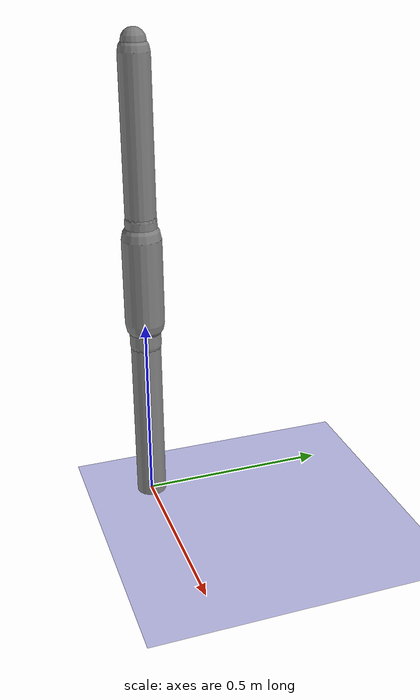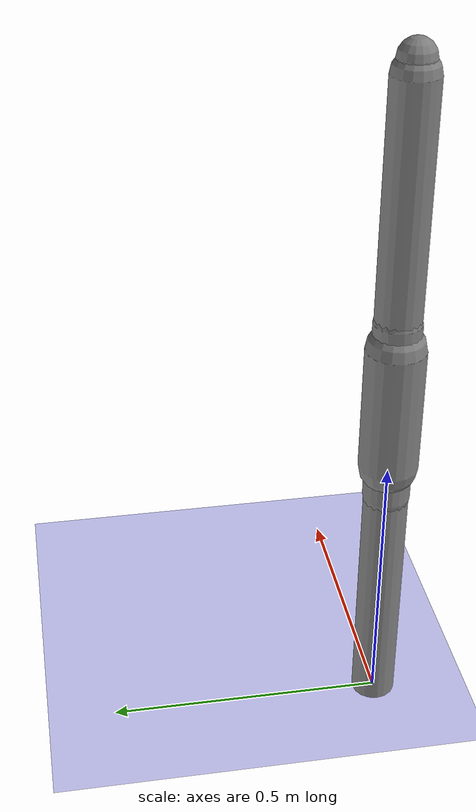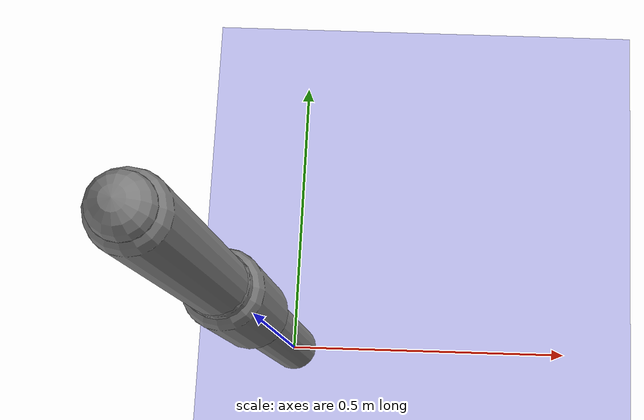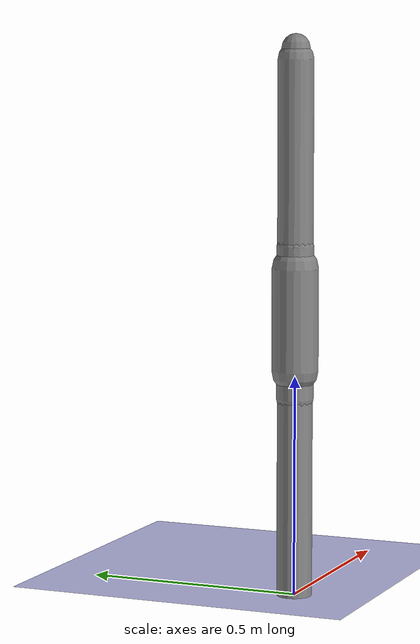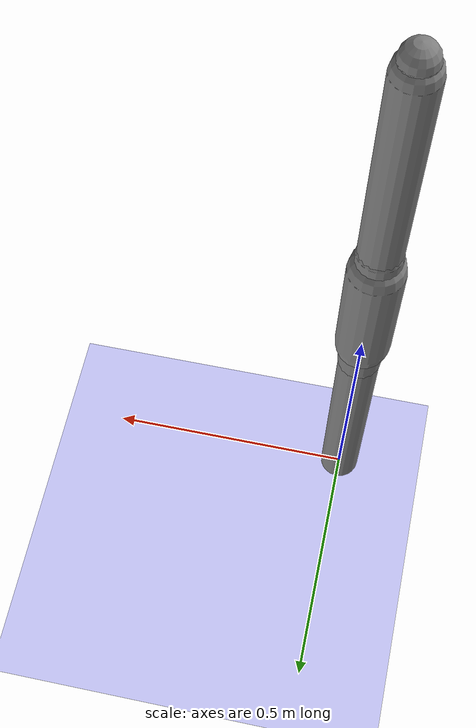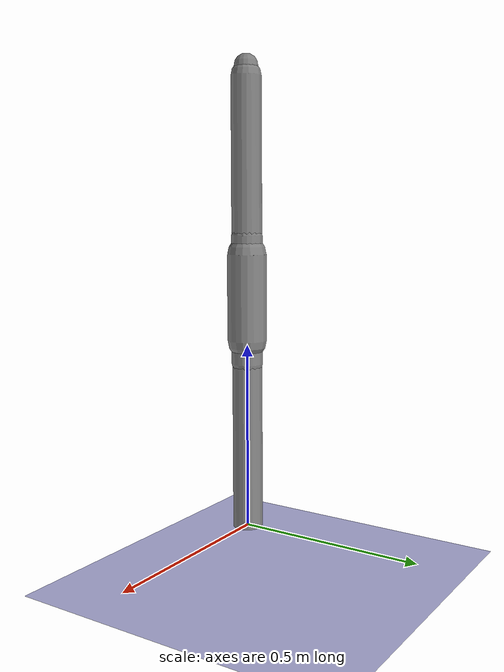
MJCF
<?xml version='1.0' encoding='UTF-8'?>
<mujoco model="robot_model">
  <worldbody>
    <light name="light" pos="0 -3 10" dir="0 0.5 -1" diffuse=".8 .8 .8" specular="0.1 0.1 0.1"/>
    <geom name="floor" type="plane" size="10.0 10.0 0.1" pos="0 0 0" rgba="0.8 0.8 1 1" contype="2" conaffinity="1"/>
    <body name="limb0" pos="0 0 0">
      <geom type="capsule" fromto="0 0 0 0 0 0.5389310855862122" size="0.04" density="1042.7771761579759" contype="1" conaffinity="2"/>
      <site type="sphere" size="0.01" name="limb0_site0" pos="0 0 0.3484966611289094"/>
      <freejoint name="limb0_root"/>
      <body name="limb1" pos="0 0 0.3484966611289094">
        <geom type="capsule" fromto="0 0 0 0 0 0.2639757366326131" size="0.03303782304059255" density="616.6153958948047" contype="1" conaffinity="2"/>
        <site type="sphere" size="0.01" name="limb1_site0" pos="0 0 0.16469519644951955"/>
        <site type="sphere" size="0.01" name="limb1_site1" pos="0 0 0.10105994540977413"/>
        <site type="sphere" size="0.01" name="limb1_site2" pos="0 0 0.14621385581581725"/>
        <body name="limb2" pos="0 0 0.16469519644951955">
          <geom type="capsule" fromto="0 0 0 0 0 0.2308883175355425" size="0.0526135099365978" density="745.4449559354061" contype="1" conaffinity="2"/>
          <joint name="joint_limb1_limb2_0" type="hinge" axis="0 1 0" range="-79.19027832141104 79.19027832141104" damping="5.0"/>
        </body>
        <body name="limb3" pos="0 0 0.10105994540977413">
          <geom type="capsule" fromto="0 0 0 0 0 0.3449366956007403" size="0.04182995516077146" density="888.638751137447" contype="1" conaffinity="2"/>
          <site type="sphere" size="0.01" name="limb3_site0" pos="0 0 0.3449366956007403"/>
          <site type="sphere" size="0.01" name="limb3_site1" pos="0 0 0.19260695635808817"/>
          <site type="sphere" size="0.01" name="limb3_site2" pos="0 0 0.3040746823714669"/>
          <body name="limb4" pos="0 0 0.3449366956007403">
            <geom type="capsule" fromto="0 0 0 0 0 0.4400906156448683" size="0.03203080114221276" density="780.1954292783695" contype="1" conaffinity="2"/>
            <joint name="joint_limb3_limb4_0" type="hinge" axis="0 1 0" range="-116.04726021765768 116.04726021765768" damping="5.0"/>
          </body>
          <body name="limb5" pos="0 0 0.19260695635808817">
            <geom type="capsule" fromto="0 0 0 0 0 0.2102868528065015" size="0.03451406520881031" density="566.487314585425" contype="1" conaffinity="2"/>
            <joint name="joint_limb3_limb5_0" type="hinge" axis="0 1 0" range="-104.94540138861841 104.94540138861841" damping="5.0"/>
          </body>
          <body name="limb6" pos="0 0 0.3040746823714669">
            <geom type="capsule" fromto="0 0 0 0 0 0.4558236432736898" size="0.040393786555888975" density="1054.6511241400187" contype="1" conaffinity="2"/>
            <joint name="joint_limb3_limb6_0" type="hinge" axis="1 0 0" range="-119.76467892017766 119.76467892017766" damping="5.0"/>
          </body>
          <joint name="joint_limb1_limb3_0" type="hinge" axis="0 1 0" range="-84.37282476408203 84.37282476408203" damping="5.0"/>
        </body>
        <body name="limb7" pos="0 0 0.14621385581581725">
          <geom type="capsule" fromto="0 0 0 0 0 0.25215086514996193" size="0.042933509923616706" density="424.6749137779462" contype="1" conaffinity="2"/>
          <joint name="joint_limb1_limb7_0" type="hinge" axis="0 0 1" range="-74.19033846047556 74.19033846047556" damping="5.0"/>
        </body>
        <joint name="joint_limb0_limb1_0" type="hinge" axis="0 1 0" range="-89.53684670583189 89.53684670583189" damping="5.0"/>
      </body>
    </body>
  </worldbody>
  <actuator>
    <position name="position_actuator_joint_limb0_limb1_0" joint="joint_limb0_limb1_0" gear="1.1522482362826674" inheritrange="1" kp="10.0"/>
    <position name="position_actuator_joint_limb1_limb2_0" joint="joint_limb1_limb2_0" gear="1.0104857860709995" inheritrange="1" kp="10.0"/>
    <position name="position_actuator_joint_limb1_limb3_0" joint="joint_limb1_limb3_0" gear="2.0" inheritrange="1" kp="10.0"/>
    <position name="position_actuator_joint_limb3_limb4_0" joint="joint_limb3_limb4_0" gear="1.839604132232704" inheritrange="1" kp="10.0"/>
    <position name="position_actuator_joint_limb3_limb5_0" joint="joint_limb3_limb5_0" gear="1.0887960667114218" inheritrange="1" kp="10.0"/>
    <position name="position_actuator_joint_limb3_limb6_0" joint="joint_limb3_limb6_0" gear="1.6376170216743322" inheritrange="1" kp="10.0"/>
    <position name="position_actuator_joint_limb1_limb7_0" joint="joint_limb1_limb7_0" gear="1.1880155203111582" inheritrange="1" kp="10.0"/>
  </actuator>
</mujoco>
